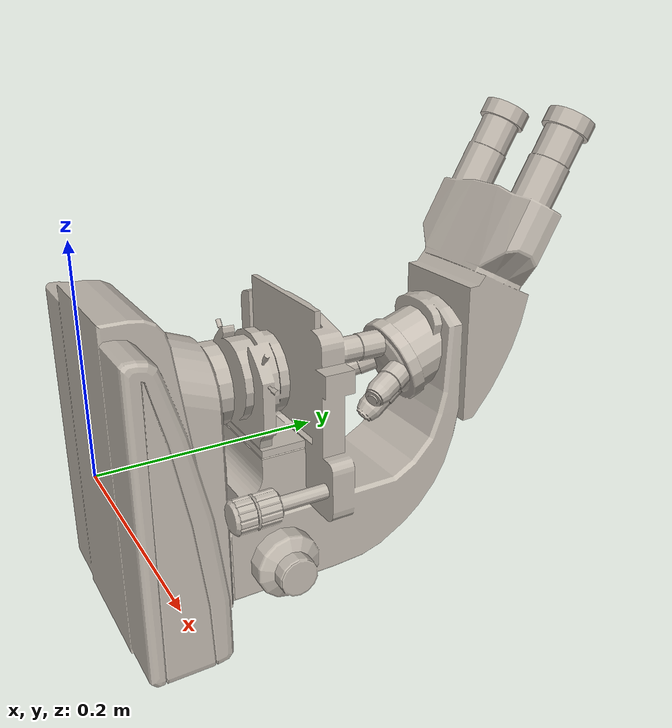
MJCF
<?xml version="1.0" encoding="utf-8"?>
<mujoco model="microscope">
    <compiler angle="radian" meshdir="." texturedir="textures"/>

    <default>
        <default class="microscope">
            <geom conaffinity="1" contype="1" group="1"/>
        </default>
        <default class="microscope_visual">
            <geom conaffinity="0" contype="0" group="2"/>
        </default>
        <default class="microscope_collision">
            <geom conaffinity="1" condim="3" contype="1" group="3" margin="0.001"/>
        </default>
    </default>

    <asset>
        <!-- Mesh asset - using the new textured model -->
        <mesh name="microscope_mesh" file="microscope_textured.obj" scale="1 1 1"/>

        <!-- Texture assets -->
        <texture name="microscope_albedo" type="2d" file="Microscope_AlbedoTransparency.png"/>
        <texture name="microscope_normal" type="2d" file="Microscope_Normal.png"/>

        <!-- Material with texture -->
        <material name="microscope_material" texture="microscope_albedo" texrepeat="1 1" specular="0.3" shininess="0.5"/>
    </asset>

    <worldbody>
        <body name="microscope" pos="0 0 0">
            <!-- Visual mesh with texture -->
            <geom class="microscope_visual" type="mesh" mesh="microscope_mesh" material="microscope_material"/>
            <!-- Simplified collision geometry -->
            <!-- Base -->
            <geom class="microscope_collision" type="box" size="0.2 0.2 0.05" pos="0 0 0.05" rgba="0.15 0.15 0.18 0.3"/>
            <!-- Main body/arm -->
            <geom class="microscope_collision" type="box" size="0.08 0.1 0.25" pos="0 0.1 0.3" rgba="0.15 0.15 0.18 0.3"/>
            <!-- Head -->
            <geom class="microscope_collision" type="box" size="0.1 0.15 0.1" pos="0 -0.05 0.5" rgba="0.15 0.15 0.18 0.3"/>
        </body>
    </worldbody>

</mujoco>
